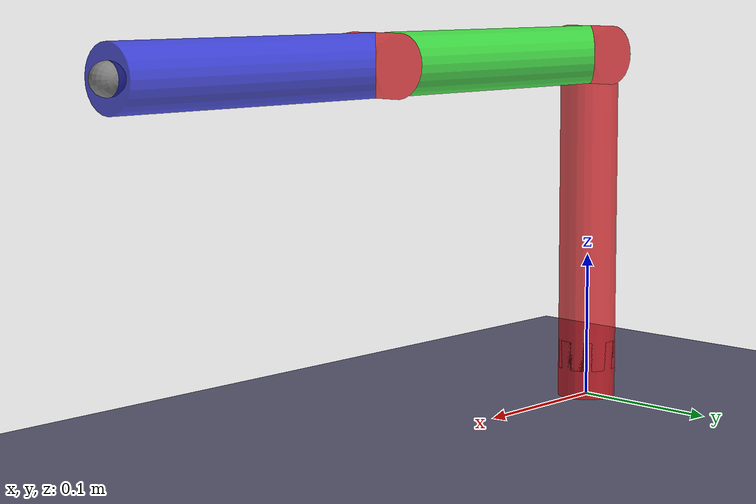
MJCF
<?xml version='1.0' encoding='UTF-8'?>
<mujoco>

    <option timestep="0.001"/>
    <option gravity="0 0 0"/>

    <asset>
        <texture type="skybox" builtin="gradient" rgb1="1 1 1" rgb2="0.5 0.5 0.8" width="265" height="256"/>
        <texture name="grid" type="2d" builtin="checker" rgb1="0.1 0.1 0.1" rgb2="0.6 0.6 0.8" width="300" height="300"/>
        <material name="grid" texture="grid" texrepeat="10 10" reflectance="0.2"/>
    </asset>

    <worldbody>
        <light pos="0 0 10"/>
        <geom type="plane" size="0.5 0.5 0.1" material="grid"/>

        <body name="ABC" pos="0 0 0" euler="0 0 0">
            <joint name="joint A" type="hinge" axis="0 0 1" limited="true" range="-180 180" />
            <geom name="point A" type="cylinder" pos="0 0 0.02" size="0.02 0.02" rgba="0.89 0.14 0.16 0.8"/>
            <geom name="link A" type="cylinder" pos="0 0 0.12" size="0.02 0.1" rgba="0.89 0.14 0.16 0.8" euler="0 0 0"/>

            <body name="BC" pos="0 0 0.24" euler="90 0 0">
                <joint name="joint B" type="hinge" axis="0 0 1" limited="true" range="-180 180" />
                <geom name="point B" type="cylinder" pos="0 0 0" size="0.02 0.02" rgba="0.89 0.14 0.16 0.8" euler="0 0 0" contype="0"/>
                <geom name="link B" type="cylinder" pos="0.1 0 0" size="0.02 0.1" rgba="0.14 0.89 0.16 0.8" euler="0 90 0"/>

                <body name="C" pos="0.21 0 0" euler="0 0 0">
                    <joint name="joint C" type="hinge" axis="0 0 1" limited="true" range="-180 180" />
                    <geom name="point C" type="cylinder" pos="0 0 0" size="0.02 0.02" rgba="0.89 0.14 0.16 0.8" euler="0 0 0" contype="0"/>
                    <geom name="link C" type="cylinder" pos="0.1 0 0" size="0.02 0.1" rgba="0.14 0.16 0.89 0.8" euler="0 90 0"/>
                    <site name="sP" size="0.01" pos="0.2 0 0"/>
                </body>

            </body>

        </body>

    </worldbody>

    <actuator>
        <position name="joint A" joint="joint A" kp="5" dampratio="1" ctrllimited="true" ctrlrange="-3.14 3.14"/>
        <position name="joint B" joint="joint B" kp="5" dampratio="1" ctrllimited="true" ctrlrange="-3.14 3.14"/>
        <position name="joint C" joint="joint C" kp="5" dampratio="0.5" ctrllimited="true" ctrlrange="-3.14 3.14"/>
    </actuator>

    <sensor>
        <framepos objtype="site" objname="sP"/>
    </sensor>

</mujoco>
